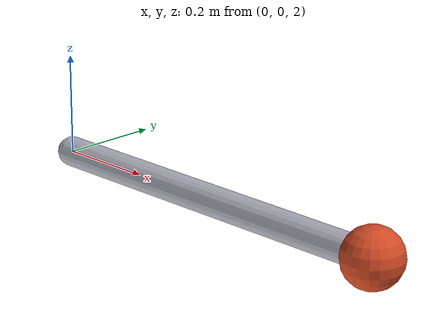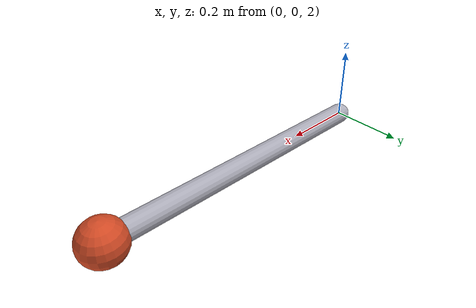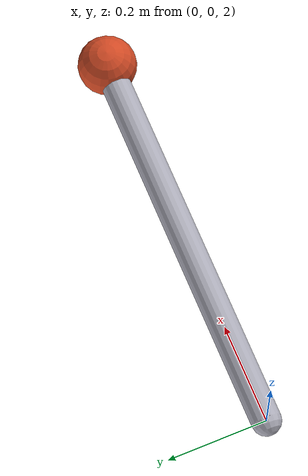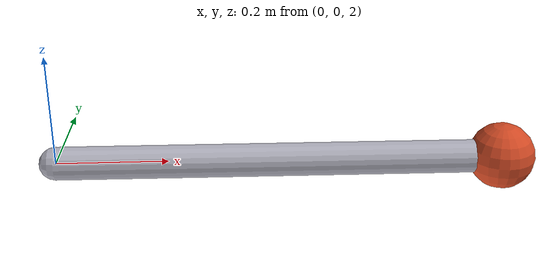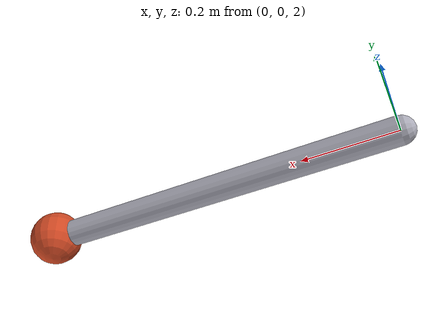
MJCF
<mujoco model="pendulum-keyframes">
  <compiler angle="radian"/>
  <option gravity="0 0 -9.81" timestep="0.002" integrator="RK4">
    <flag energy="enable"/>
  </option>

  <worldbody>
    <body name="arm" pos="0 0 2">
      <joint name="hinge" type="hinge" axis="0 1 0"/>
      <geom name="rod" type="capsule" size="0.03" fromto="0 0 0 0.8 0 0"
            mass="0.5" rgba="0.7 0.7 0.75 1"/>
      <geom name="tip" type="sphere" size="0.06" pos="0.8 0 0"
            mass="0.5" rgba="0.85 0.30 0.15 1"/>
    </body>
  </worldbody>

  <keyframe>
    <key name="rest"       qpos="1.5707963268"  qvel="0.0"/>
    <key name="horizontal" qpos="0.0"           qvel="0.0"/>
    <key name="inverted"   qpos="-1.5707963268" qvel="0.0"/>
  </keyframe>
</mujoco>
